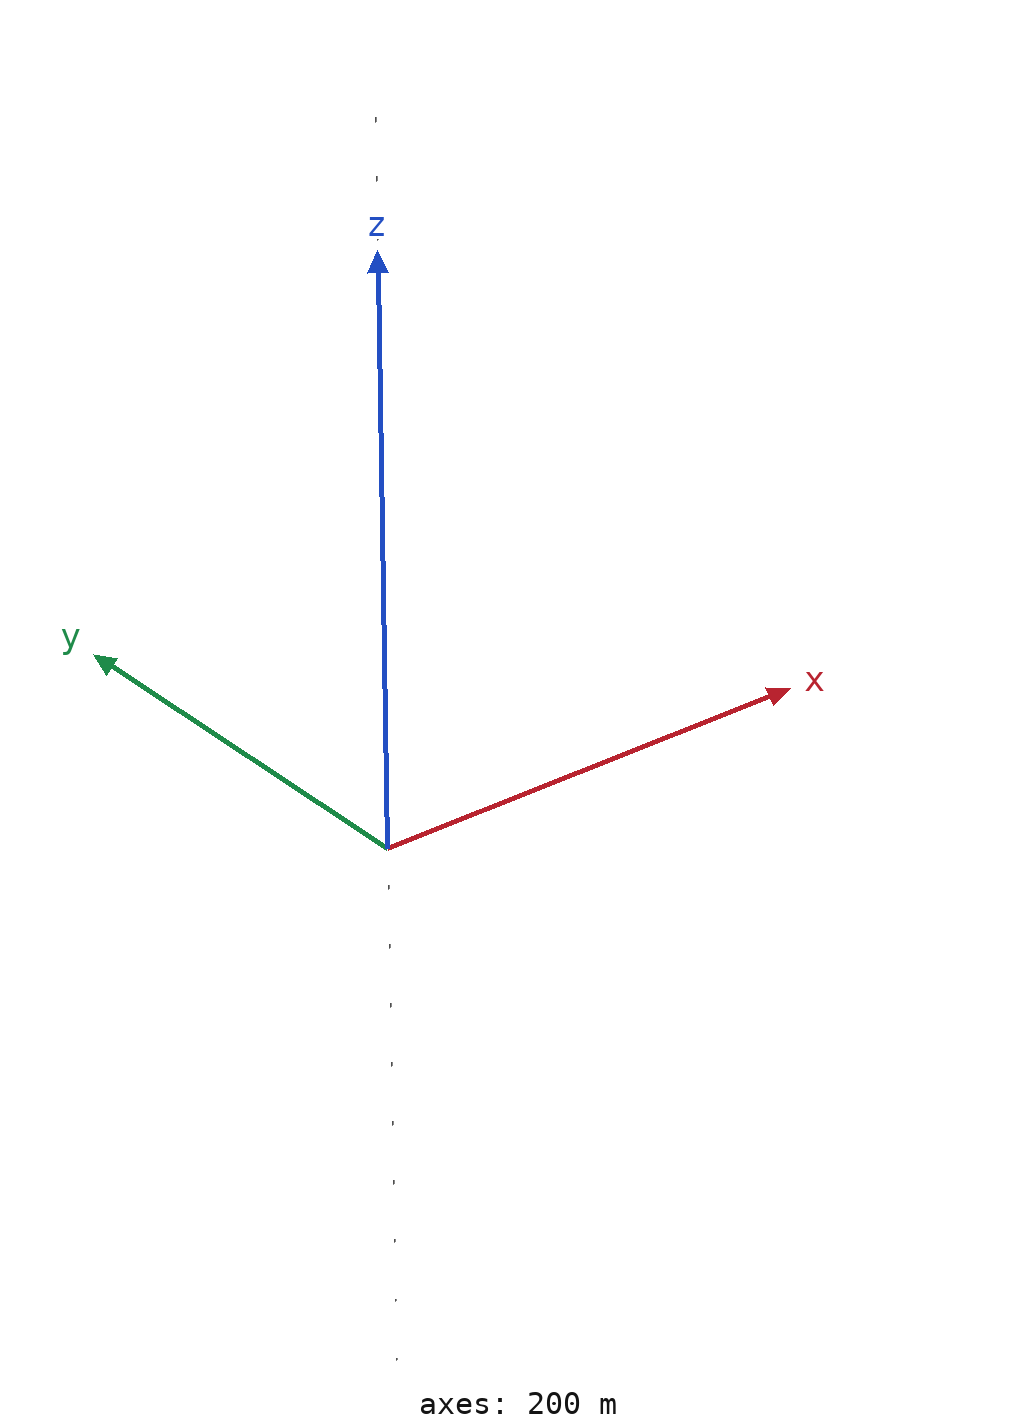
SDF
<?xml version="1.0" ?>
<sdf version="1.5">
  <model name="cable">
    <static>true</static>
    <link name="link">

      <collision name="collision">
          <geometry>
            <cylinder>
              <radius>.01</radius>
              <length>500</length>
            </cylinder>
          </geometry>
      </collision>

      <visual name="visual">
        <cast_shadows>false</cast_shadows>
          <geometry>
            <cylinder>
              <radius>.01</radius>
              <length>500</length>
            </cylinder>
          </geometry>

 <material>
  <ambient>0 0 0 1</ambient>
  <diffuse>0 0 0 1</diffuse>
  <specular>0 0 0 1</specular>
  <emissive>0 0 0 1</emissive>
</material>
      </visual>
    </link>

  </model>
</sdf>
